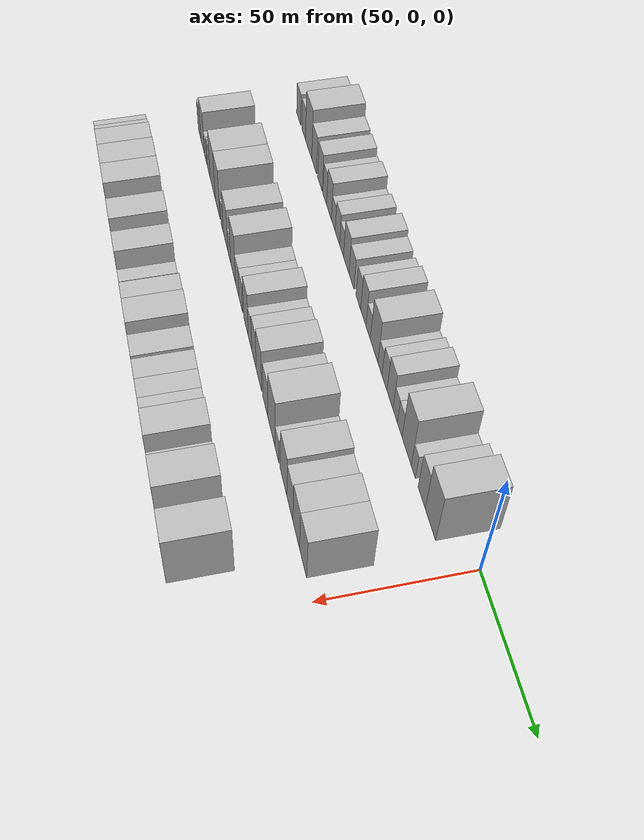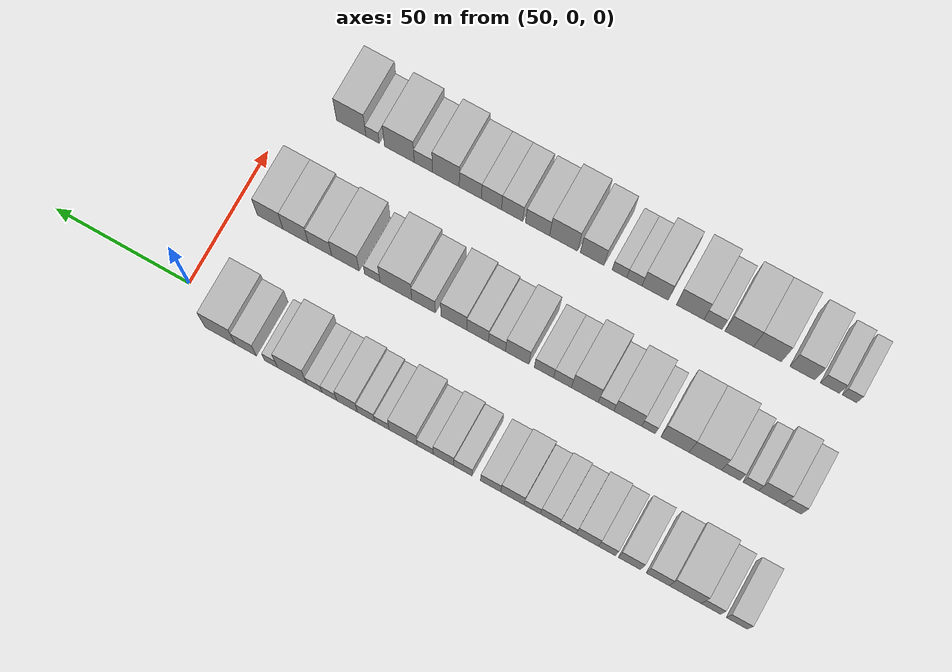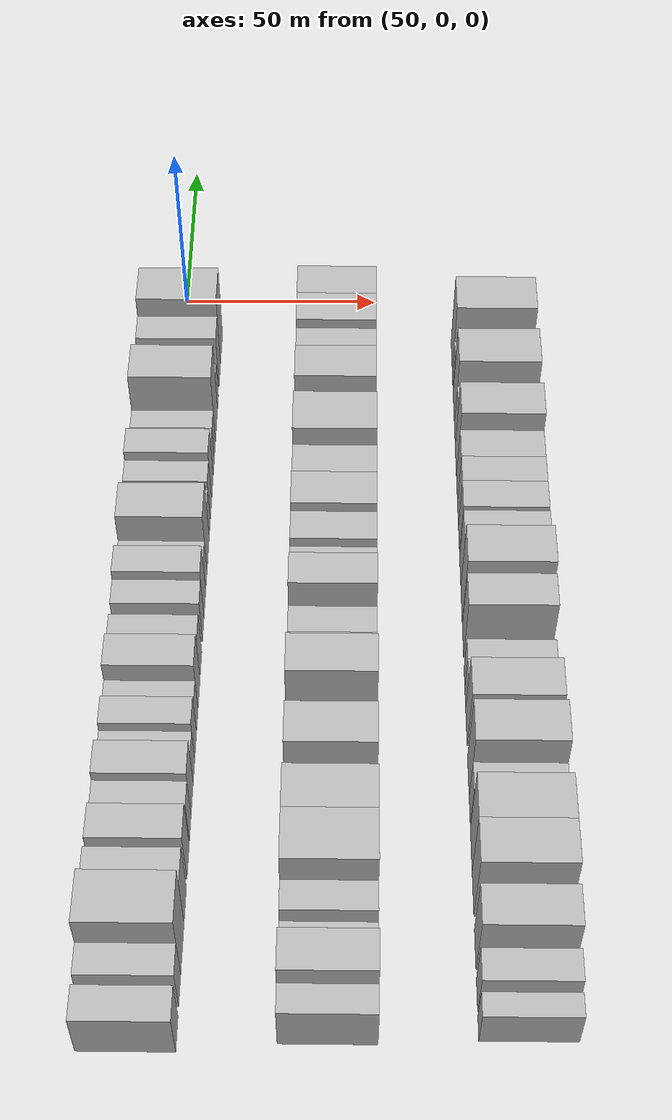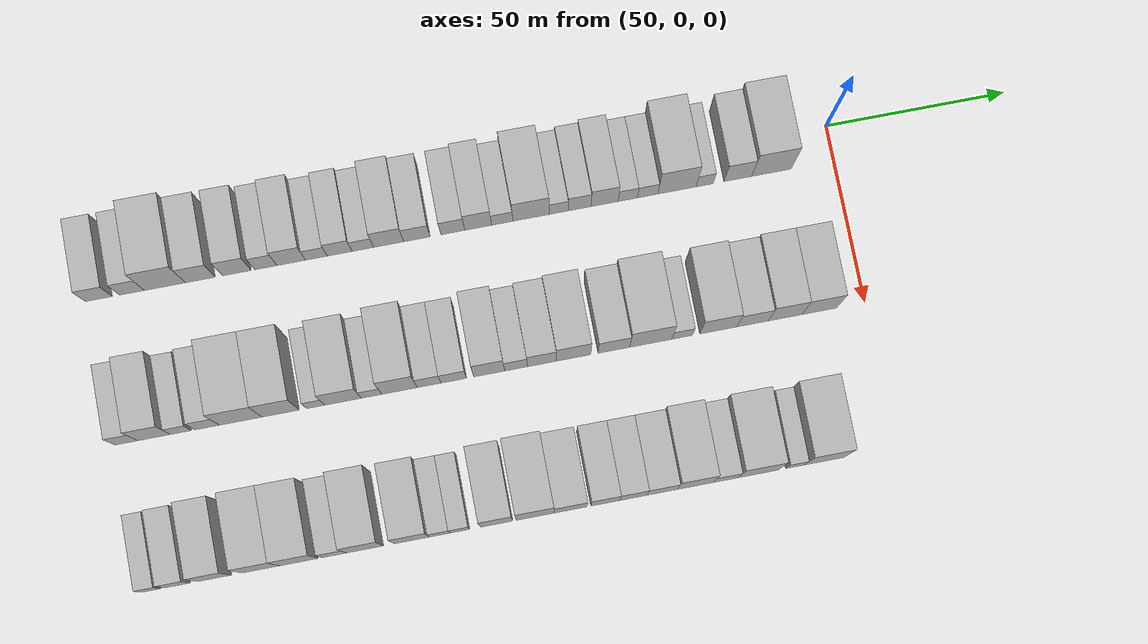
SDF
<sdf version="1.6">
 <world name="default">
  <model name="building_48">
   <static>1</static>
   <pose>50.0000 -203.6342 0 0.000000 0.000000 0.000000</pose>
   <link name="link">
    <pose>0 0 7.50 0 0 0</pose>
    <collision name="collision"><geometry><box><size>20.0000 7.4019 15.0000</size></box></geometry></collision>
    <visual name="visual">
     <cast_shadows>0</cast_shadows>
     <geometry><box><size>20.0000 7.4019 15.0000</size></box></geometry>
     <material>
      <script>
       <uri>model://HANNAS_wall/materials/scripts</uri>
       <uri>model://HANNAS_wall/materials/textures</uri>
       <name>vrc/HANNAS_wall</name>
      </script>
     </material>
    </visual>
   </link>
  </model>
  <model name="building_49">
   <static>1</static>
   <pose>50.0000 -194.5378 0 0.000000 0.000000 0.000000</pose>
   <link name="link">
    <pose>0 0 7.50 0 0 0</pose>
    <collision name="collision"><geometry><box><size>20.0000 6.7910 15.0000</size></box></geometry></collision>
    <visual name="visual">
     <cast_shadows>0</cast_shadows>
     <geometry><box><size>20.0000 6.7910 15.0000</size></box></geometry>
     <material>
      <script>
       <uri>model://HANNAS_wall/materials/scripts</uri>
       <uri>model://HANNAS_wall/materials/textures</uri>
       <name>vrc/HANNAS_wall</name>
      </script>
     </material>
    </visual>
   </link>
  </model>
  <model name="building_50">
   <static>1</static>
   <pose>50.0000 -185.4857 0 0.000000 0.000000 0.000000</pose>
   <link name="link">
    <pose>0 0 12.00 0 0 0</pose>
    <collision name="collision"><geometry><box><size>20.0000 11.3131 24.0000</size></box></geometry></collision>
    <visual name="visual">
     <cast_shadows>0</cast_shadows>
     <geometry><box><size>20.0000 11.3131 24.0000</size></box></geometry>
     <material>
      <script>
       <uri>model://HANNAS_wall/materials/scripts</uri>
       <uri>model://HANNAS_wall/materials/textures</uri>
       <name>vrc/HANNAS_wall</name>
      </script>
     </material>
    </visual>
   </link>
  </model>
  <model name="building_51">
   <static>1</static>
   <pose>50.0000 -175.7561 0 0.000000 0.000000 0.000000</pose>
   <link name="link">
    <pose>0 0 9.00 0 0 0</pose>
    <collision name="collision"><geometry><box><size>20.0000 8.1462 18.0000</size></box></geometry></collision>
    <visual name="visual">
     <cast_shadows>0</cast_shadows>
     <geometry><box><size>20.0000 8.1462 18.0000</size></box></geometry>
     <material>
      <script>
       <uri>model://HANNAS_wall/materials/scripts</uri>
       <uri>model://HANNAS_wall/materials/textures</uri>
       <name>vrc/HANNAS_wall</name>
      </script>
     </material>
    </visual>
   </link>
  </model>
  <model name="building_52">
   <static>1</static>
   <pose>50.0000 -165.7284 0 0.000000 0.000000 0.000000</pose>
   <link name="link">
    <pose>0 0 9.00 0 0 0</pose>
    <collision name="collision"><geometry><box><size>20.0000 7.9092 18.0000</size></box></geometry></collision>
    <visual name="visual">
     <cast_shadows>0</cast_shadows>
     <geometry><box><size>20.0000 7.9092 18.0000</size></box></geometry>
     <material>
      <script>
       <uri>model://HANNAS_wall/materials/scripts</uri>
       <uri>model://HANNAS_wall/materials/textures</uri>
       <name>vrc/HANNAS_wall</name>
      </script>
     </material>
    </visual>
   </link>
  </model>
  <model name="building_53">
   <static>1</static>
   <pose>50.0000 -157.7359 0 0.000000 0.000000 0.000000</pose>
   <link name="link">
    <pose>0 0 7.50 0 0 0</pose>
    <collision name="collision"><geometry><box><size>20.0000 6.0759 15.0000</size></box></geometry></collision>
    <visual name="visual">
     <cast_shadows>0</cast_shadows>
     <geometry><box><size>20.0000 6.0759 15.0000</size></box></geometry>
     <material>
      <script>
       <uri>model://HANNAS_wall/materials/scripts</uri>
       <uri>model://HANNAS_wall/materials/textures</uri>
       <name>vrc/HANNAS_wall</name>
      </script>
     </material>
    </visual>
   </link>
  </model>
  <model name="building_54">
   <static>1</static>
   <pose>50.0000 -150.7229 0 0.000000 0.000000 0.000000</pose>
   <link name="link">
    <pose>0 0 9.00 0 0 0</pose>
    <collision name="collision"><geometry><box><size>20.0000 7.9500 18.0000</size></box></geometry></collision>
    <visual name="visual">
     <cast_shadows>0</cast_shadows>
     <geometry><box><size>20.0000 7.9500 18.0000</size></box></geometry>
     <material>
      <script>
       <uri>model://HANNAS_wall/materials/scripts</uri>
       <uri>model://HANNAS_wall/materials/textures</uri>
       <name>vrc/HANNAS_wall</name>
      </script>
     </material>
    </visual>
   </link>
  </model>
  <model name="building_55">
   <static>1</static>
   <pose>50.0000 -143.7627 0 0.000000 0.000000 0.000000</pose>
   <link name="link">
    <pose>0 0 6.00 0 0 0</pose>
    <collision name="collision"><geometry><box><size>20.0000 5.9704 12.0000</size></box></geometry></collision>
    <visual name="visual">
     <cast_shadows>0</cast_shadows>
     <geometry><box><size>20.0000 5.9704 12.0000</size></box></geometry>
     <material>
      <script>
       <uri>model://HANNAS_wall/materials/scripts</uri>
       <uri>model://HANNAS_wall/materials/textures</uri>
       <name>vrc/HANNAS_wall</name>
      </script>
     </material>
    </visual>
   </link>
  </model>
  <model name="building_56">
   <static>1</static>
   <pose>50.0000 -137.3527 0 0.000000 0.000000 0.000000</pose>
   <link name="link">
    <pose>0 0 7.50 0 0 0</pose>
    <collision name="collision"><geometry><box><size>20.0000 6.8496 15.0000</size></box></geometry></collision>
    <visual name="visual">
     <cast_shadows>0</cast_shadows>
     <geometry><box><size>20.0000 6.8496 15.0000</size></box></geometry>
     <material>
      <script>
       <uri>model://HANNAS_wall/materials/scripts</uri>
       <uri>model://HANNAS_wall/materials/textures</uri>
       <name>vrc/HANNAS_wall</name>
      </script>
     </material>
    </visual>
   </link>
  </model>
  <model name="building_57">
   <static>1</static>
   <pose>50.0000 -130.9528 0 0.000000 0.000000 0.000000</pose>
   <link name="link">
    <pose>0 0 6.00 0 0 0</pose>
    <collision name="collision"><geometry><box><size>20.0000 5.9501 12.0000</size></box></geometry></collision>
    <visual name="visual">
     <cast_shadows>0</cast_shadows>
     <geometry><box><size>20.0000 5.9501 12.0000</size></box></geometry>
     <material>
      <script>
       <uri>model://HANNAS_wall/materials/scripts</uri>
       <uri>model://HANNAS_wall/materials/textures</uri>
       <name>vrc/HANNAS_wall</name>
      </script>
     </material>
    </visual>
   </link>
  </model>
  <model name="building_58">
   <static>1</static>
   <pose>50.0000 -123.8295 0 0.000000 0.000000 0.000000</pose>
   <link name="link">
    <pose>0 0 9.00 0 0 0</pose>
    <collision name="collision"><geometry><box><size>20.0000 8.2965 18.0000</size></box></geometry></collision>
    <visual name="visual">
     <cast_shadows>0</cast_shadows>
     <geometry><box><size>20.0000 8.2965 18.0000</size></box></geometry>
     <material>
      <script>
       <uri>model://HANNAS_wall/materials/scripts</uri>
       <uri>model://HANNAS_wall/materials/textures</uri>
       <name>vrc/HANNAS_wall</name>
      </script>
     </material>
    </visual>
   </link>
  </model>
  <model name="building_59">
   <static>1</static>
   <pose>50.0000 -116.0347 0 0.000000 0.000000 0.000000</pose>
   <link name="link">
    <pose>0 0 7.50 0 0 0</pose>
    <collision name="collision"><geometry><box><size>20.0000 7.2932 15.0000</size></box></geometry></collision>
    <visual name="visual">
     <cast_shadows>0</cast_shadows>
     <geometry><box><size>20.0000 7.2932 15.0000</size></box></geometry>
     <material>
      <script>
       <uri>model://HANNAS_wall/materials/scripts</uri>
       <uri>model://HANNAS_wall/materials/textures</uri>
       <name>vrc/HANNAS_wall</name>
      </script>
     </material>
    </visual>
   </link>
  </model>
  <model name="building_60">
   <static>1</static>
   <pose>50.0000 -106.1025 0 0.000000 0.000000 0.000000</pose>
   <link name="link">
    <pose>0 0 7.50 0 0 0</pose>
    <collision name="collision"><geometry><box><size>20.0000 6.5712 15.0000</size></box></geometry></collision>
    <visual name="visual">
     <cast_shadows>0</cast_shadows>
     <geometry><box><size>20.0000 6.5712 15.0000</size></box></geometry>
     <material>
      <script>
       <uri>model://HANNAS_wall/materials/scripts</uri>
       <uri>model://HANNAS_wall/materials/textures</uri>
       <name>vrc/HANNAS_wall</name>
      </script>
     </material>
    </visual>
   </link>
  </model>
  <model name="building_61">
   <static>1</static>
   <pose>50.0000 -99.1050 0 0.000000 0.000000 0.000000</pose>
   <link name="link">
    <pose>0 0 9.00 0 0 0</pose>
    <collision name="collision"><geometry><box><size>20.0000 7.4237 18.0000</size></box></geometry></collision>
    <visual name="visual">
     <cast_shadows>0</cast_shadows>
     <geometry><box><size>20.0000 7.4237 18.0000</size></box></geometry>
     <material>
      <script>
       <uri>model://HANNAS_wall/materials/scripts</uri>
       <uri>model://HANNAS_wall/materials/textures</uri>
       <name>vrc/HANNAS_wall</name>
      </script>
     </material>
    </visual>
   </link>
  </model>
  <model name="building_62">
   <static>1</static>
   <pose>50.0000 -92.4383 0 0.000000 0.000000 0.000000</pose>
   <link name="link">
    <pose>0 0 6.00 0 0 0</pose>
    <collision name="collision"><geometry><box><size>20.0000 5.9098 12.0000</size></box></geometry></collision>
    <visual name="visual">
     <cast_shadows>0</cast_shadows>
     <geometry><box><size>20.0000 5.9098 12.0000</size></box></geometry>
     <material>
      <script>
       <uri>model://HANNAS_wall/materials/scripts</uri>
       <uri>model://HANNAS_wall/materials/textures</uri>
       <name>vrc/HANNAS_wall</name>
      </script>
     </material>
    </visual>
   </link>
  </model>
  <model name="building_63">
   <static>1</static>
   <pose>50.0000 -84.4412 0 0.000000 0.000000 0.000000</pose>
   <link name="link">
    <pose>0 0 10.50 0 0 0</pose>
    <collision name="collision"><geometry><box><size>20.0000 10.0844 21.0000</size></box></geometry></collision>
    <visual name="visual">
     <cast_shadows>0</cast_shadows>
     <geometry><box><size>20.0000 10.0844 21.0000</size></box></geometry>
     <material>
      <script>
       <uri>model://HANNAS_wall/materials/scripts</uri>
       <uri>model://HANNAS_wall/materials/textures</uri>
       <name>vrc/HANNAS_wall</name>
      </script>
     </material>
    </visual>
   </link>
  </model>
  <model name="building_64">
   <static>1</static>
   <pose>50.0000 -76.7588 0 0.000000 0.000000 0.000000</pose>
   <link name="link">
    <pose>0 0 6.00 0 0 0</pose>
    <collision name="collision"><geometry><box><size>20.0000 5.2803 12.0000</size></box></geometry></collision>
    <visual name="visual">
     <cast_shadows>0</cast_shadows>
     <geometry><box><size>20.0000 5.2803 12.0000</size></box></geometry>
     <material>
      <script>
       <uri>model://HANNAS_wall/materials/scripts</uri>
       <uri>model://HANNAS_wall/materials/textures</uri>
       <name>vrc/HANNAS_wall</name>
      </script>
     </material>
    </visual>
   </link>
  </model>
  <model name="building_65">
   <static>1</static>
   <pose>50.0000 -70.9563 0 0.000000 0.000000 0.000000</pose>
   <link name="link">
    <pose>0 0 7.50 0 0 0</pose>
    <collision name="collision"><geometry><box><size>20.0000 6.3248 15.0000</size></box></geometry></collision>
    <visual name="visual">
     <cast_shadows>0</cast_shadows>
     <geometry><box><size>20.0000 6.3248 15.0000</size></box></geometry>
     <material>
      <script>
       <uri>model://HANNAS_wall/materials/scripts</uri>
       <uri>model://HANNAS_wall/materials/textures</uri>
       <name>vrc/HANNAS_wall</name>
      </script>
     </material>
    </visual>
   </link>
  </model>
  <model name="building_66">
   <static>1</static>
   <pose>50.0000 -64.0385 0 0.000000 0.000000 0.000000</pose>
   <link name="link">
    <pose>0 0 9.00 0 0 0</pose>
    <collision name="collision"><geometry><box><size>20.0000 7.5108 18.0000</size></box></geometry></collision>
    <visual name="visual">
     <cast_shadows>0</cast_shadows>
     <geometry><box><size>20.0000 7.5108 18.0000</size></box></geometry>
     <material>
      <script>
       <uri>model://HANNAS_wall/materials/scripts</uri>
       <uri>model://HANNAS_wall/materials/textures</uri>
       <name>vrc/HANNAS_wall</name>
      </script>
     </material>
    </visual>
   </link>
  </model>
  <model name="building_67">
   <static>1</static>
   <pose>50.0000 -57.5866 0 0.000000 0.000000 0.000000</pose>
   <link name="link">
    <pose>0 0 6.00 0 0 0</pose>
    <collision name="collision"><geometry><box><size>20.0000 5.3930 12.0000</size></box></geometry></collision>
    <visual name="visual">
     <cast_shadows>0</cast_shadows>
     <geometry><box><size>20.0000 5.3930 12.0000</size></box></geometry>
     <material>
      <script>
       <uri>model://HANNAS_wall/materials/scripts</uri>
       <uri>model://HANNAS_wall/materials/textures</uri>
       <name>vrc/HANNAS_wall</name>
      </script>
     </material>
    </visual>
   </link>
  </model>
  <model name="building_68">
   <static>1</static>
   <pose>50.0000 -52.0692 0 0.000000 0.000000 0.000000</pose>
   <link name="link">
    <pose>0 0 6.00 0 0 0</pose>
    <collision name="collision"><geometry><box><size>20.0000 5.6418 12.0000</size></box></geometry></collision>
    <visual name="visual">
     <cast_shadows>0</cast_shadows>
     <geometry><box><size>20.0000 5.6418 12.0000</size></box></geometry>
     <material>
      <script>
       <uri>model://HANNAS_wall/materials/scripts</uri>
       <uri>model://HANNAS_wall/materials/textures</uri>
       <name>vrc/HANNAS_wall</name>
      </script>
     </material>
    </visual>
   </link>
  </model>
  <model name="building_69">
   <static>1</static>
   <pose>50.0000 -43.9307 0 0.000000 0.000000 0.000000</pose>
   <link name="link">
    <pose>0 0 12.00 0 0 0</pose>
    <collision name="collision"><geometry><box><size>20.0000 10.6352 24.0000</size></box></geometry></collision>
    <visual name="visual">
     <cast_shadows>0</cast_shadows>
     <geometry><box><size>20.0000 10.6352 24.0000</size></box></geometry>
     <material>
      <script>
       <uri>model://HANNAS_wall/materials/scripts</uri>
       <uri>model://HANNAS_wall/materials/textures</uri>
       <name>vrc/HANNAS_wall</name>
      </script>
     </material>
    </visual>
   </link>
  </model>
  <model name="building_70">
   <static>1</static>
   <pose>50.0000 -36.2061 0 0.000000 0.000000 0.000000</pose>
   <link name="link">
    <pose>0 0 6.00 0 0 0</pose>
    <collision name="collision"><geometry><box><size>20.0000 4.8141 12.0000</size></box></geometry></collision>
    <visual name="visual">
     <cast_shadows>0</cast_shadows>
     <geometry><box><size>20.0000 4.8141 12.0000</size></box></geometry>
     <material>
      <script>
       <uri>model://HANNAS_wall/materials/scripts</uri>
       <uri>model://HANNAS_wall/materials/textures</uri>
       <name>vrc/HANNAS_wall</name>
      </script>
     </material>
    </visual>
   </link>
  </model>
  <model name="building_71">
   <static>1</static>
   <pose>50.0000 -26.9461 0 0.000000 0.000000 0.000000</pose>
   <link name="link">
    <pose>0 0 9.00 0 0 0</pose>
    <collision name="collision"><geometry><box><size>20.0000 7.7059 18.0000</size></box></geometry></collision>
    <visual name="visual">
     <cast_shadows>0</cast_shadows>
     <geometry><box><size>20.0000 7.7059 18.0000</size></box></geometry>
     <material>
      <script>
       <uri>model://HANNAS_wall/materials/scripts</uri>
       <uri>model://HANNAS_wall/materials/textures</uri>
       <name>vrc/HANNAS_wall</name>
      </script>
     </material>
    </visual>
   </link>
  </model>
  <model name="building_72">
   <static>1</static>
   <pose>50.0000 -17.5170 0 0.000000 0.000000 0.000000</pose>
   <link name="link">
    <pose>0 0 12.00 0 0 0</pose>
    <collision name="collision"><geometry><box><size>20.0000 11.1522 24.0000</size></box></geometry></collision>
    <visual name="visual">
     <cast_shadows>0</cast_shadows>
     <geometry><box><size>20.0000 11.1522 24.0000</size></box></geometry>
     <material>
      <script>
       <uri>model://HANNAS_wall/materials/scripts</uri>
       <uri>model://HANNAS_wall/materials/textures</uri>
       <name>vrc/HANNAS_wall</name>
      </script>
     </material>
    </visual>
   </link>
  </model>
  <model name="building_187">
   <static>1</static>
   <pose>90.0000 -202.3079 0 0.000000 0.000000 0.000000</pose>
   <link name="link">
    <pose>0 0 7.50 0 0 0</pose>
    <collision name="collision"><geometry><box><size>20.0000 6.2241 15.0000</size></box></geometry></collision>
    <visual name="visual">
     <cast_shadows>0</cast_shadows>
     <geometry><box><size>20.0000 6.2241 15.0000</size></box></geometry>
     <material>
      <script>
       <uri>model://HANNAS_wall/materials/scripts</uri>
       <uri>model://HANNAS_wall/materials/textures</uri>
       <name>vrc/HANNAS_wall</name>
      </script>
     </material>
    </visual>
   </link>
  </model>
  <model name="building_188">
   <static>1</static>
   <pose>90.0000 -194.7701 0 0.000000 0.000000 0.000000</pose>
   <link name="link">
    <pose>0 0 10.50 0 0 0</pose>
    <collision name="collision"><geometry><box><size>20.0000 8.8515 21.0000</size></box></geometry></collision>
    <visual name="visual">
     <cast_shadows>0</cast_shadows>
     <geometry><box><size>20.0000 8.8515 21.0000</size></box></geometry>
     <material>
      <script>
       <uri>model://HANNAS_wall/materials/scripts</uri>
       <uri>model://HANNAS_wall/materials/textures</uri>
       <name>vrc/HANNAS_wall</name>
      </script>
     </material>
    </visual>
   </link>
  </model>
  <model name="building_189">
   <static>1</static>
   <pose>90.0000 -187.5400 0 0.000000 0.000000 0.000000</pose>
   <link name="link">
    <pose>0 0 6.00 0 0 0</pose>
    <collision name="collision"><geometry><box><size>20.0000 5.6086 12.0000</size></box></geometry></collision>
    <visual name="visual">
     <cast_shadows>0</cast_shadows>
     <geometry><box><size>20.0000 5.6086 12.0000</size></box></geometry>
     <material>
      <script>
       <uri>model://HANNAS_wall/materials/scripts</uri>
       <uri>model://HANNAS_wall/materials/textures</uri>
       <name>vrc/HANNAS_wall</name>
      </script>
     </material>
    </visual>
   </link>
  </model>
  <model name="building_190">
   <static>1</static>
   <pose>90.0000 -180.4118 0 0.000000 0.000000 0.000000</pose>
   <link name="link">
    <pose>0 0 7.50 0 0 0</pose>
    <collision name="collision"><geometry><box><size>20.0000 6.6477 15.0000</size></box></geometry></collision>
    <visual name="visual">
     <cast_shadows>0</cast_shadows>
     <geometry><box><size>20.0000 6.6477 15.0000</size></box></geometry>
     <material>
      <script>
       <uri>model://HANNAS_wall/materials/scripts</uri>
       <uri>model://HANNAS_wall/materials/textures</uri>
       <name>vrc/HANNAS_wall</name>
      </script>
     </material>
    </visual>
   </link>
  </model>
  <model name="building_191">
   <static>1</static>
   <pose>90.0000 -171.2923 0 0.000000 0.000000 0.000000</pose>
   <link name="link">
    <pose>0 0 12.00 0 0 0</pose>
    <collision name="collision"><geometry><box><size>20.0000 11.5913 24.0000</size></box></geometry></collision>
    <visual name="visual">
     <cast_shadows>0</cast_shadows>
     <geometry><box><size>20.0000 11.5913 24.0000</size></box></geometry>
     <material>
      <script>
       <uri>model://HANNAS_wall/materials/scripts</uri>
       <uri>model://HANNAS_wall/materials/textures</uri>
       <name>vrc/HANNAS_wall</name>
      </script>
     </material>
    </visual>
   </link>
  </model>
  <model name="building_192">
   <static>1</static>
   <pose>90.0000 -160.4311 0 0.000000 0.000000 0.000000</pose>
   <link name="link">
    <pose>0 0 12.00 0 0 0</pose>
    <collision name="collision"><geometry><box><size>20.0000 10.1312 24.0000</size></box></geometry></collision>
    <visual name="visual">
     <cast_shadows>0</cast_shadows>
     <geometry><box><size>20.0000 10.1312 24.0000</size></box></geometry>
     <material>
      <script>
       <uri>model://HANNAS_wall/materials/scripts</uri>
       <uri>model://HANNAS_wall/materials/textures</uri>
       <name>vrc/HANNAS_wall</name>
      </script>
     </material>
    </visual>
   </link>
  </model>
  <model name="building_193">
   <static>1</static>
   <pose>90.0000 -150.9032 0 0.000000 0.000000 0.000000</pose>
   <link name="link">
    <pose>0 0 6.00 0 0 0</pose>
    <collision name="collision"><geometry><box><size>20.0000 4.9245 12.0000</size></box></geometry></collision>
    <visual name="visual">
     <cast_shadows>0</cast_shadows>
     <geometry><box><size>20.0000 4.9245 12.0000</size></box></geometry>
     <material>
      <script>
       <uri>model://HANNAS_wall/materials/scripts</uri>
       <uri>model://HANNAS_wall/materials/textures</uri>
       <name>vrc/HANNAS_wall</name>
      </script>
     </material>
    </visual>
   </link>
  </model>
  <model name="building_194">
   <static>1</static>
   <pose>90.0000 -143.4529 0 0.000000 0.000000 0.000000</pose>
   <link name="link">
    <pose>0 0 10.50 0 0 0</pose>
    <collision name="collision"><geometry><box><size>20.0000 9.9761 21.0000</size></box></geometry></collision>
    <visual name="visual">
     <cast_shadows>0</cast_shadows>
     <geometry><box><size>20.0000 9.9761 21.0000</size></box></geometry>
     <material>
      <script>
       <uri>model://HANNAS_wall/materials/scripts</uri>
       <uri>model://HANNAS_wall/materials/textures</uri>
       <name>vrc/HANNAS_wall</name>
      </script>
     </material>
    </visual>
   </link>
  </model>
  <model name="building_195">
   <static>1</static>
   <pose>90.0000 -135.6485 0 0.000000 0.000000 0.000000</pose>
   <link name="link">
    <pose>0 0 6.00 0 0 0</pose>
    <collision name="collision"><geometry><box><size>20.0000 5.6328 12.0000</size></box></geometry></collision>
    <visual name="visual">
     <cast_shadows>0</cast_shadows>
     <geometry><box><size>20.0000 5.6328 12.0000</size></box></geometry>
     <material>
      <script>
       <uri>model://HANNAS_wall/materials/scripts</uri>
       <uri>model://HANNAS_wall/materials/textures</uri>
       <name>vrc/HANNAS_wall</name>
      </script>
     </material>
    </visual>
   </link>
  </model>
  <model name="building_196">
   <static>1</static>
   <pose>90.0000 -127.9877 0 0.000000 0.000000 0.000000</pose>
   <link name="link">
    <pose>0 0 12.00 0 0 0</pose>
    <collision name="collision"><geometry><box><size>20.0000 9.6887 24.0000</size></box></geometry></collision>
    <visual name="visual">
     <cast_shadows>0</cast_shadows>
     <geometry><box><size>20.0000 9.6887 24.0000</size></box></geometry>
     <material>
      <script>
       <uri>model://HANNAS_wall/materials/scripts</uri>
       <uri>model://HANNAS_wall/materials/textures</uri>
       <name>vrc/HANNAS_wall</name>
      </script>
     </material>
    </visual>
   </link>
  </model>
  <model name="building_197">
   <static>1</static>
   <pose>90.0000 -119.8965 0 0.000000 0.000000 0.000000</pose>
   <link name="link">
    <pose>0 0 7.50 0 0 0</pose>
    <collision name="collision"><geometry><box><size>20.0000 6.4936 15.0000</size></box></geometry></collision>
    <visual name="visual">
     <cast_shadows>0</cast_shadows>
     <geometry><box><size>20.0000 6.4936 15.0000</size></box></geometry>
     <material>
      <script>
       <uri>model://HANNAS_wall/materials/scripts</uri>
       <uri>model://HANNAS_wall/materials/textures</uri>
       <name>vrc/HANNAS_wall</name>
      </script>
     </material>
    </visual>
   </link>
  </model>
  <model name="building_198">
   <static>1</static>
   <pose>90.0000 -113.1658 0 0.000000 0.000000 0.000000</pose>
   <link name="link">
    <pose>0 0 7.50 0 0 0</pose>
    <collision name="collision"><geometry><box><size>20.0000 6.9678 15.0000</size></box></geometry></collision>
    <visual name="visual">
     <cast_shadows>0</cast_shadows>
     <geometry><box><size>20.0000 6.9678 15.0000</size></box></geometry>
     <material>
      <script>
       <uri>model://HANNAS_wall/materials/scripts</uri>
       <uri>model://HANNAS_wall/materials/textures</uri>
       <name>vrc/HANNAS_wall</name>
      </script>
     </material>
    </visual>
   </link>
  </model>
  <model name="building_199">
   <static>1</static>
   <pose>90.0000 -103.4485 0 0.000000 0.000000 0.000000</pose>
   <link name="link">
    <pose>0 0 10.50 0 0 0</pose>
    <collision name="collision"><geometry><box><size>20.0000 8.4668 21.0000</size></box></geometry></collision>
    <visual name="visual">
     <cast_shadows>0</cast_shadows>
     <geometry><box><size>20.0000 8.4668 21.0000</size></box></geometry>
     <material>
      <script>
       <uri>model://HANNAS_wall/materials/scripts</uri>
       <uri>model://HANNAS_wall/materials/textures</uri>
       <name>vrc/HANNAS_wall</name>
      </script>
     </material>
    </visual>
   </link>
  </model>
  <model name="building_200">
   <static>1</static>
   <pose>90.0000 -96.1022 0 0.000000 0.000000 0.000000</pose>
   <link name="link">
    <pose>0 0 7.50 0 0 0</pose>
    <collision name="collision"><geometry><box><size>20.0000 6.2259 15.0000</size></box></geometry></collision>
    <visual name="visual">
     <cast_shadows>0</cast_shadows>
     <geometry><box><size>20.0000 6.2259 15.0000</size></box></geometry>
     <material>
      <script>
       <uri>model://HANNAS_wall/materials/scripts</uri>
       <uri>model://HANNAS_wall/materials/textures</uri>
       <name>vrc/HANNAS_wall</name>
      </script>
     </material>
    </visual>
   </link>
  </model>
  <model name="building_201">
   <static>1</static>
   <pose>90.0000 -89.0180 0 0.000000 0.000000 0.000000</pose>
   <link name="link">
    <pose>0 0 9.00 0 0 0</pose>
    <collision name="collision"><geometry><box><size>20.0000 7.9424 18.0000</size></box></geometry></collision>
    <visual name="visual">
     <cast_shadows>0</cast_shadows>
     <geometry><box><size>20.0000 7.9424 18.0000</size></box></geometry>
     <material>
      <script>
       <uri>model://HANNAS_wall/materials/scripts</uri>
       <uri>model://HANNAS_wall/materials/textures</uri>
       <name>vrc/HANNAS_wall</name>
      </script>
     </material>
    </visual>
   </link>
  </model>
  <model name="building_202">
   <static>1</static>
   <pose>90.0000 -80.3369 0 0.000000 0.000000 0.000000</pose>
   <link name="link">
    <pose>0 0 10.50 0 0 0</pose>
    <collision name="collision"><geometry><box><size>20.0000 9.4198 21.0000</size></box></geometry></collision>
    <visual name="visual">
     <cast_shadows>0</cast_shadows>
     <geometry><box><size>20.0000 9.4198 21.0000</size></box></geometry>
     <material>
      <script>
       <uri>model://HANNAS_wall/materials/scripts</uri>
       <uri>model://HANNAS_wall/materials/textures</uri>
       <name>vrc/HANNAS_wall</name>
      </script>
     </material>
    </visual>
   </link>
  </model>
  <model name="building_203">
   <static>1</static>
   <pose>90.0000 -69.3116 0 0.000000 0.000000 0.000000</pose>
   <link name="link">
    <pose>0 0 9.00 0 0 0</pose>
    <collision name="collision"><geometry><box><size>20.0000 8.6309 18.0000</size></box></geometry></collision>
    <visual name="visual">
     <cast_shadows>0</cast_shadows>
     <geometry><box><size>20.0000 8.6309 18.0000</size></box></geometry>
     <material>
      <script>
       <uri>model://HANNAS_wall/materials/scripts</uri>
       <uri>model://HANNAS_wall/materials/textures</uri>
       <name>vrc/HANNAS_wall</name>
      </script>
     </material>
    </visual>
   </link>
  </model>
  <model name="building_204">
   <static>1</static>
   <pose>90.0000 -59.1666 0 0.000000 0.000000 0.000000</pose>
   <link name="link">
    <pose>0 0 12.00 0 0 0</pose>
    <collision name="collision"><geometry><box><size>20.0000 11.6591 24.0000</size></box></geometry></collision>
    <visual name="visual">
     <cast_shadows>0</cast_shadows>
     <geometry><box><size>20.0000 11.6591 24.0000</size></box></geometry>
     <material>
      <script>
       <uri>model://HANNAS_wall/materials/scripts</uri>
       <uri>model://HANNAS_wall/materials/textures</uri>
       <name>vrc/HANNAS_wall</name>
      </script>
     </material>
    </visual>
   </link>
  </model>
  <model name="building_205">
   <static>1</static>
   <pose>90.0000 -50.4842 0 0.000000 0.000000 0.000000</pose>
   <link name="link">
    <pose>0 0 6.00 0 0 0</pose>
    <collision name="collision"><geometry><box><size>20.0000 5.7057 12.0000</size></box></geometry></collision>
    <visual name="visual">
     <cast_shadows>0</cast_shadows>
     <geometry><box><size>20.0000 5.7057 12.0000</size></box></geometry>
     <material>
      <script>
       <uri>model://HANNAS_wall/materials/scripts</uri>
       <uri>model://HANNAS_wall/materials/textures</uri>
       <name>vrc/HANNAS_wall</name>
      </script>
     </material>
    </visual>
   </link>
  </model>
  <model name="building_206">
   <static>1</static>
   <pose>90.0000 -40.5463 0 0.000000 0.000000 0.000000</pose>
   <link name="link">
    <pose>0 0 10.50 0 0 0</pose>
    <collision name="collision"><geometry><box><size>20.0000 10.1701 21.0000</size></box></geometry></collision>
    <visual name="visual">
     <cast_shadows>0</cast_shadows>
     <geometry><box><size>20.0000 10.1701 21.0000</size></box></geometry>
     <material>
      <script>
       <uri>model://HANNAS_wall/materials/scripts</uri>
       <uri>model://HANNAS_wall/materials/textures</uri>
       <name>vrc/HANNAS_wall</name>
      </script>
     </material>
    </visual>
   </link>
  </model>
  <model name="building_207">
   <static>1</static>
   <pose>90.0000 -31.1009 0 0.000000 0.000000 0.000000</pose>
   <link name="link">
    <pose>0 0 9.00 0 0 0</pose>
    <collision name="collision"><geometry><box><size>20.0000 8.7208 18.0000</size></box></geometry></collision>
    <visual name="visual">
     <cast_shadows>0</cast_shadows>
     <geometry><box><size>20.0000 8.7208 18.0000</size></box></geometry>
     <material>
      <script>
       <uri>model://HANNAS_wall/materials/scripts</uri>
       <uri>model://HANNAS_wall/materials/textures</uri>
       <name>vrc/HANNAS_wall</name>
      </script>
     </material>
    </visual>
   </link>
  </model>
  <model name="building_208">
   <static>1</static>
   <pose>90.0000 -22.0668 0 0.000000 0.000000 0.000000</pose>
   <link name="link">
    <pose>0 0 10.50 0 0 0</pose>
    <collision name="collision"><geometry><box><size>20.0000 9.3476 21.0000</size></box></geometry></collision>
    <visual name="visual">
     <cast_shadows>0</cast_shadows>
     <geometry><box><size>20.0000 9.3476 21.0000</size></box></geometry>
     <material>
      <script>
       <uri>model://HANNAS_wall/materials/scripts</uri>
       <uri>model://HANNAS_wall/materials/textures</uri>
       <name>vrc/HANNAS_wall</name>
      </script>
     </material>
    </visual>
   </link>
  </model>
  <model name="building_209">
   <static>1</static>
   <pose>90.0000 -12.5988 0 0.000000 0.000000 0.000000</pose>
   <link name="link">
    <pose>0 0 10.50 0 0 0</pose>
    <collision name="collision"><geometry><box><size>20.0000 9.5884 21.0000</size></box></geometry></collision>
    <visual name="visual">
     <cast_shadows>0</cast_shadows>
     <geometry><box><size>20.0000 9.5884 21.0000</size></box></geometry>
     <material>
      <script>
       <uri>model://HANNAS_wall/materials/scripts</uri>
       <uri>model://HANNAS_wall/materials/textures</uri>
       <name>vrc/HANNAS_wall</name>
      </script>
     </material>
    </visual>
   </link>
  </model>
  <model name="building_324">
   <static>1</static>
   <pose>130.0000 -201.8311 0 0.000000 0.000000 0.000000</pose>
   <link name="link">
    <pose>0 0 6.00 0 0 0</pose>
    <collision name="collision"><geometry><box><size>20.0000 5.1684 12.0000</size></box></geometry></collision>
    <visual name="visual">
     <cast_shadows>0</cast_shadows>
     <geometry><box><size>20.0000 5.1684 12.0000</size></box></geometry>
     <material>
      <script>
       <uri>model://HANNAS_wall/materials/scripts</uri>
       <uri>model://HANNAS_wall/materials/textures</uri>
       <name>vrc/HANNAS_wall</name>
      </script>
     </material>
    </visual>
   </link>
  </model>
  <model name="building_325">
   <static>1</static>
   <pose>130.0000 -194.8148 0 0.000000 0.000000 0.000000</pose>
   <link name="link">
    <pose>0 0 7.50 0 0 0</pose>
    <collision name="collision"><geometry><box><size>20.0000 6.8642 15.0000</size></box></geometry></collision>
    <visual name="visual">
     <cast_shadows>0</cast_shadows>
     <geometry><box><size>20.0000 6.8642 15.0000</size></box></geometry>
     <material>
      <script>
       <uri>model://HANNAS_wall/materials/scripts</uri>
       <uri>model://HANNAS_wall/materials/textures</uri>
       <name>vrc/HANNAS_wall</name>
      </script>
     </material>
    </visual>
   </link>
  </model>
  <model name="building_326">
   <static>1</static>
   <pose>130.0000 -184.9267 0 0.000000 0.000000 0.000000</pose>
   <link name="link">
    <pose>0 0 10.50 0 0 0</pose>
    <collision name="collision"><geometry><box><size>20.0000 8.9119 21.0000</size></box></geometry></collision>
    <visual name="visual">
     <cast_shadows>0</cast_shadows>
     <geometry><box><size>20.0000 8.9119 21.0000</size></box></geometry>
     <material>
      <script>
       <uri>model://HANNAS_wall/materials/scripts</uri>
       <uri>model://HANNAS_wall/materials/textures</uri>
       <name>vrc/HANNAS_wall</name>
      </script>
     </material>
    </visual>
   </link>
  </model>
  <model name="building_327">
   <static>1</static>
   <pose>130.0000 -172.4538 0 0.000000 0.000000 0.000000</pose>
   <link name="link">
    <pose>0 0 12.00 0 0 0</pose>
    <collision name="collision"><geometry><box><size>20.0000 10.0340 24.0000</size></box></geometry></collision>
    <visual name="visual">
     <cast_shadows>0</cast_shadows>
     <geometry><box><size>20.0000 10.0340 24.0000</size></box></geometry>
     <material>
      <script>
       <uri>model://HANNAS_wall/materials/scripts</uri>
       <uri>model://HANNAS_wall/materials/textures</uri>
       <name>vrc/HANNAS_wall</name>
      </script>
     </material>
    </visual>
   </link>
  </model>
  <model name="building_328">
   <static>1</static>
   <pose>130.0000 -162.2620 0 0.000000 0.000000 0.000000</pose>
   <link name="link">
    <pose>0 0 12.00 0 0 0</pose>
    <collision name="collision"><geometry><box><size>20.0000 10.3497 24.0000</size></box></geometry></collision>
    <visual name="visual">
     <cast_shadows>0</cast_shadows>
     <geometry><box><size>20.0000 10.3497 24.0000</size></box></geometry>
     <material>
      <script>
       <uri>model://HANNAS_wall/materials/scripts</uri>
       <uri>model://HANNAS_wall/materials/textures</uri>
       <name>vrc/HANNAS_wall</name>
      </script>
     </material>
    </visual>
   </link>
  </model>
  <model name="building_329">
   <static>1</static>
   <pose>130.0000 -152.7917 0 0.000000 0.000000 0.000000</pose>
   <link name="link">
    <pose>0 0 7.50 0 0 0</pose>
    <collision name="collision"><geometry><box><size>20.0000 6.5908 15.0000</size></box></geometry></collision>
    <visual name="visual">
     <cast_shadows>0</cast_shadows>
     <geometry><box><size>20.0000 6.5908 15.0000</size></box></geometry>
     <material>
      <script>
       <uri>model://HANNAS_wall/materials/scripts</uri>
       <uri>model://HANNAS_wall/materials/textures</uri>
       <name>vrc/HANNAS_wall</name>
      </script>
     </material>
    </visual>
   </link>
  </model>
  <model name="building_330">
   <static>1</static>
   <pose>130.0000 -144.5112 0 0.000000 0.000000 0.000000</pose>
   <link name="link">
    <pose>0 0 12.00 0 0 0</pose>
    <collision name="collision"><geometry><box><size>20.0000 9.9700 24.0000</size></box></geometry></collision>
    <visual name="visual">
     <cast_shadows>0</cast_shadows>
     <geometry><box><size>20.0000 9.9700 24.0000</size></box></geometry>
     <material>
      <script>
       <uri>model://HANNAS_wall/materials/scripts</uri>
       <uri>model://HANNAS_wall/materials/textures</uri>
       <name>vrc/HANNAS_wall</name>
      </script>
     </material>
    </visual>
   </link>
  </model>
  <model name="building_331">
   <static>1</static>
   <pose>130.0000 -131.7794 0 0.000000 0.000000 0.000000</pose>
   <link name="link">
    <pose>0 0 10.50 0 0 0</pose>
    <collision name="collision"><geometry><box><size>20.0000 9.4937 21.0000</size></box></geometry></collision>
    <visual name="visual">
     <cast_shadows>0</cast_shadows>
     <geometry><box><size>20.0000 9.4937 21.0000</size></box></geometry>
     <material>
      <script>
       <uri>model://HANNAS_wall/materials/scripts</uri>
       <uri>model://HANNAS_wall/materials/textures</uri>
       <name>vrc/HANNAS_wall</name>
      </script>
     </material>
    </visual>
   </link>
  </model>
  <model name="building_332">
   <static>1</static>
   <pose>130.0000 -124.2555 0 0.000000 0.000000 0.000000</pose>
   <link name="link">
    <pose>0 0 6.00 0 0 0</pose>
    <collision name="collision"><geometry><box><size>20.0000 5.5541 12.0000</size></box></geometry></collision>
    <visual name="visual">
     <cast_shadows>0</cast_shadows>
     <geometry><box><size>20.0000 5.5541 12.0000</size></box></geometry>
     <material>
      <script>
       <uri>model://HANNAS_wall/materials/scripts</uri>
       <uri>model://HANNAS_wall/materials/textures</uri>
       <name>vrc/HANNAS_wall</name>
      </script>
     </material>
    </visual>
   </link>
  </model>
  <model name="building_333">
   <static>1</static>
   <pose>130.0000 -118.8282 0 0.000000 0.000000 0.000000</pose>
   <link name="link">
    <pose>0 0 6.00 0 0 0</pose>
    <collision name="collision"><geometry><box><size>20.0000 5.3004 12.0000</size></box></geometry></collision>
    <visual name="visual">
     <cast_shadows>0</cast_shadows>
     <geometry><box><size>20.0000 5.3004 12.0000</size></box></geometry>
     <material>
      <script>
       <uri>model://HANNAS_wall/materials/scripts</uri>
       <uri>model://HANNAS_wall/materials/textures</uri>
       <name>vrc/HANNAS_wall</name>
      </script>
     </material>
    </visual>
   </link>
  </model>
  <model name="building_334">
   <static>1</static>
   <pose>130.0000 -108.8479 0 0.000000 0.000000 0.000000</pose>
   <link name="link">
    <pose>0 0 10.50 0 0 0</pose>
    <collision name="collision"><geometry><box><size>20.0000 8.6603 21.0000</size></box></geometry></collision>
    <visual name="visual">
     <cast_shadows>0</cast_shadows>
     <geometry><box><size>20.0000 8.6603 21.0000</size></box></geometry>
     <material>
      <script>
       <uri>model://HANNAS_wall/materials/scripts</uri>
       <uri>model://HANNAS_wall/materials/textures</uri>
       <name>vrc/HANNAS_wall</name>
      </script>
     </material>
    </visual>
   </link>
  </model>
  <model name="building_335">
   <static>1</static>
   <pose>130.0000 -98.3996 0 0.000000 0.000000 0.000000</pose>
   <link name="link">
    <pose>0 0 12.00 0 0 0</pose>
    <collision name="collision"><geometry><box><size>20.0000 10.2363 24.0000</size></box></geometry></collision>
    <visual name="visual">
     <cast_shadows>0</cast_shadows>
     <geometry><box><size>20.0000 10.2363 24.0000</size></box></geometry>
     <material>
      <script>
       <uri>model://HANNAS_wall/materials/scripts</uri>
       <uri>model://HANNAS_wall/materials/textures</uri>
       <name>vrc/HANNAS_wall</name>
      </script>
     </material>
    </visual>
   </link>
  </model>
  <model name="building_336">
   <static>1</static>
   <pose>130.0000 -88.8247 0 0.000000 0.000000 0.000000</pose>
   <link name="link">
    <pose>0 0 9.00 0 0 0</pose>
    <collision name="collision"><geometry><box><size>20.0000 8.9135 18.0000</size></box></geometry></collision>
    <visual name="visual">
     <cast_shadows>0</cast_shadows>
     <geometry><box><size>20.0000 8.9135 18.0000</size></box></geometry>
     <material>
      <script>
       <uri>model://HANNAS_wall/materials/scripts</uri>
       <uri>model://HANNAS_wall/materials/textures</uri>
       <name>vrc/HANNAS_wall</name>
      </script>
     </material>
    </visual>
   </link>
  </model>
  <model name="building_337">
   <static>1</static>
   <pose>130.0000 -79.4628 0 0.000000 0.000000 0.000000</pose>
   <link name="link">
    <pose>0 0 9.00 0 0 0</pose>
    <collision name="collision"><geometry><box><size>20.0000 7.8104 18.0000</size></box></geometry></collision>
    <visual name="visual">
     <cast_shadows>0</cast_shadows>
     <geometry><box><size>20.0000 7.8104 18.0000</size></box></geometry>
     <material>
      <script>
       <uri>model://HANNAS_wall/materials/scripts</uri>
       <uri>model://HANNAS_wall/materials/textures</uri>
       <name>vrc/HANNAS_wall</name>
      </script>
     </material>
    </visual>
   </link>
  </model>
  <model name="building_338">
   <static>1</static>
   <pose>130.0000 -71.8590 0 0.000000 0.000000 0.000000</pose>
   <link name="link">
    <pose>0 0 9.00 0 0 0</pose>
    <collision name="collision"><geometry><box><size>20.0000 7.3972 18.0000</size></box></geometry></collision>
    <visual name="visual">
     <cast_shadows>0</cast_shadows>
     <geometry><box><size>20.0000 7.3972 18.0000</size></box></geometry>
     <material>
      <script>
       <uri>model://HANNAS_wall/materials/scripts</uri>
       <uri>model://HANNAS_wall/materials/textures</uri>
       <name>vrc/HANNAS_wall</name>
      </script>
     </material>
    </visual>
   </link>
  </model>
  <model name="building_339">
   <static>1</static>
   <pose>130.0000 -64.0577 0 0.000000 0.000000 0.000000</pose>
   <link name="link">
    <pose>0 0 9.00 0 0 0</pose>
    <collision name="collision"><geometry><box><size>20.0000 8.2053 18.0000</size></box></geometry></collision>
    <visual name="visual">
     <cast_shadows>0</cast_shadows>
     <geometry><box><size>20.0000 8.2053 18.0000</size></box></geometry>
     <material>
      <script>
       <uri>model://HANNAS_wall/materials/scripts</uri>
       <uri>model://HANNAS_wall/materials/textures</uri>
       <name>vrc/HANNAS_wall</name>
      </script>
     </material>
    </visual>
   </link>
  </model>
  <model name="building_340">
   <static>1</static>
   <pose>130.0000 -55.0135 0 0.000000 0.000000 0.000000</pose>
   <link name="link">
    <pose>0 0 12.00 0 0 0</pose>
    <collision name="collision"><geometry><box><size>20.0000 9.8831 24.0000</size></box></geometry></collision>
    <visual name="visual">
     <cast_shadows>0</cast_shadows>
     <geometry><box><size>20.0000 9.8831 24.0000</size></box></geometry>
     <material>
      <script>
       <uri>model://HANNAS_wall/materials/scripts</uri>
       <uri>model://HANNAS_wall/materials/textures</uri>
       <name>vrc/HANNAS_wall</name>
      </script>
     </material>
    </visual>
   </link>
  </model>
  <model name="building_341">
   <static>1</static>
   <pose>130.0000 -46.6797 0 0.000000 0.000000 0.000000</pose>
   <link name="link">
    <pose>0 0 7.50 0 0 0</pose>
    <collision name="collision"><geometry><box><size>20.0000 6.7844 15.0000</size></box></geometry></collision>
    <visual name="visual">
     <cast_shadows>0</cast_shadows>
     <geometry><box><size>20.0000 6.7844 15.0000</size></box></geometry>
     <material>
      <script>
       <uri>model://HANNAS_wall/materials/scripts</uri>
       <uri>model://HANNAS_wall/materials/textures</uri>
       <name>vrc/HANNAS_wall</name>
      </script>
     </material>
    </visual>
   </link>
  </model>
  <model name="building_342">
   <static>1</static>
   <pose>130.0000 -37.7643 0 0.000000 0.000000 0.000000</pose>
   <link name="link">
    <pose>0 0 12.00 0 0 0</pose>
    <collision name="collision"><geometry><box><size>20.0000 11.0465 24.0000</size></box></geometry></collision>
    <visual name="visual">
     <cast_shadows>0</cast_shadows>
     <geometry><box><size>20.0000 11.0465 24.0000</size></box></geometry>
     <material>
      <script>
       <uri>model://HANNAS_wall/materials/scripts</uri>
       <uri>model://HANNAS_wall/materials/textures</uri>
       <name>vrc/HANNAS_wall</name>
      </script>
     </material>
    </visual>
   </link>
  </model>
  <model name="building_343">
   <static>1</static>
   <pose>130.0000 -27.7673 0 0.000000 0.000000 0.000000</pose>
   <link name="link">
    <pose>0 0 6.00 0 0 0</pose>
    <collision name="collision"><geometry><box><size>20.0000 4.9475 12.0000</size></box></geometry></collision>
    <visual name="visual">
     <cast_shadows>0</cast_shadows>
     <geometry><box><size>20.0000 4.9475 12.0000</size></box></geometry>
     <material>
      <script>
       <uri>model://HANNAS_wall/materials/scripts</uri>
       <uri>model://HANNAS_wall/materials/textures</uri>
       <name>vrc/HANNAS_wall</name>
      </script>
     </material>
    </visual>
   </link>
  </model>
  <model name="building_344">
   <static>1</static>
   <pose>130.0000 -19.7926 0 0.000000 0.000000 0.000000</pose>
   <link name="link">
    <pose>0 0 12.00 0 0 0</pose>
    <collision name="collision"><geometry><box><size>20.0000 11.0018 24.0000</size></box></geometry></collision>
    <visual name="visual">
     <cast_shadows>0</cast_shadows>
     <geometry><box><size>20.0000 11.0018 24.0000</size></box></geometry>
     <material>
      <script>
       <uri>model://HANNAS_wall/materials/scripts</uri>
       <uri>model://HANNAS_wall/materials/textures</uri>
       <name>vrc/HANNAS_wall</name>
      </script>
     </material>
    </visual>
   </link>
  </model>
 </world>
</sdf>
